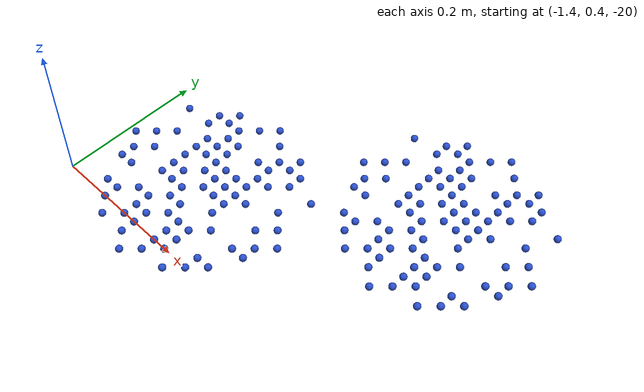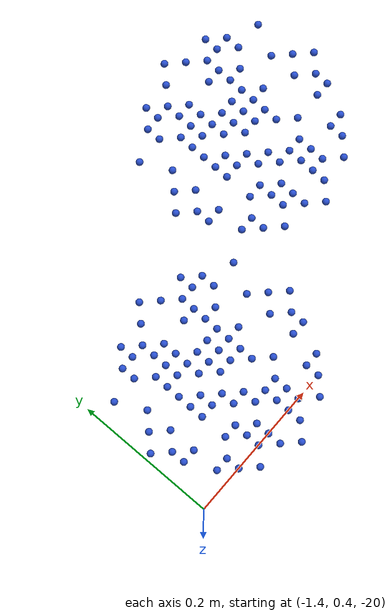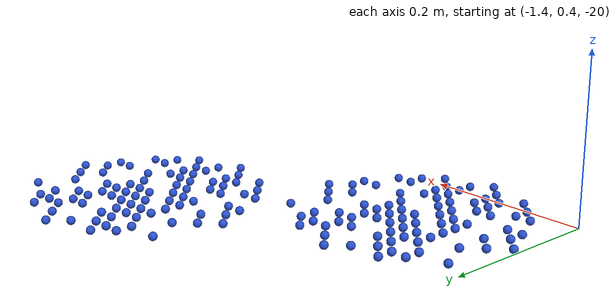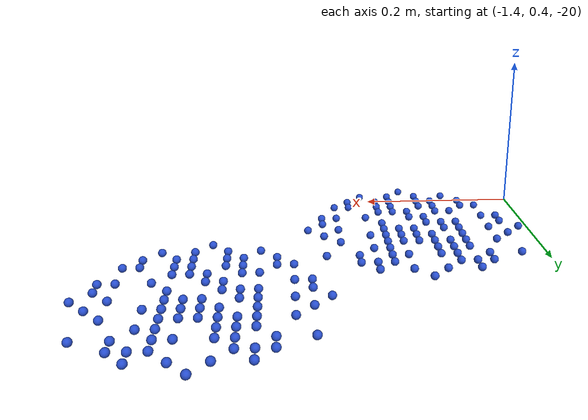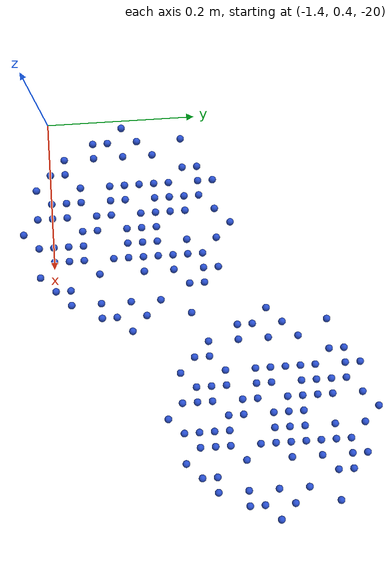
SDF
<sdf version="1.7">
 <model name="Washbasin_Water">
  <static>true</static>
  <link name="washbasin_water_tr">
   <pose>-0.99 0.68 -20 0 0 0</pose>
   <visual name="green_mark_centre1_visual">
    <geometry><sphere><radius>0.005</radius></sphere></geometry>
    <material><script><name>Gazebo/BlueGlow</name></script></material>
   </visual>
   <visual name="green_mark_centre2_visual">
    <pose>0.02 0 0 0 0 0</pose>
    <geometry><sphere><radius>0.005</radius></sphere></geometry>
    <material><script><name>Gazebo/BlueGlow</name></script></material>
   </visual>
   <visual name="green_mark_centre4_visual">
    <pose>0.04 0 0 0 0 0</pose>
    <geometry><sphere><radius>0.005</radius></sphere></geometry>
    <material><script><name>Gazebo/BlueGlow</name></script></material>
   </visual>
   <visual name="green_mark_centre5_visual">
    <pose>-0.04 0 0 0 0 0</pose>
    <geometry><sphere><radius>0.005</radius></sphere></geometry>
    <material><script><name>Gazebo/BlueGlow</name></script></material>
   </visual>
   <visual name="green_mark_centre7_visual">
    <pose>-0.06 0 0 0 0 0</pose>
    <geometry><sphere><radius>0.005</radius></sphere></geometry>
    <material><script><name>Gazebo/BlueGlow</name></script></material>
   </visual>
   <visual name="green_mark_centre8_visual">
    <pose>0 0.02 0 0 0 0</pose>
    <geometry><sphere><radius>0.005</radius></sphere></geometry>
    <material><script><name>Gazebo/BlueGlow</name></script></material>
   </visual>
   <visual name="green_mark_centre10_visual">
    <pose>0 0.04 0 0 0 0</pose>
    <geometry><sphere><radius>0.005</radius></sphere></geometry>
    <material><script><name>Gazebo/BlueGlow</name></script></material>
   </visual>
   <visual name="green_mark_centre11_visual">
    <pose>0 -0.04 0 0 0 0</pose>
    <geometry><sphere><radius>0.005</radius></sphere></geometry>
    <material><script><name>Gazebo/BlueGlow</name></script></material>
   </visual>
   <visual name="green_mark_centre13_visual">
    <pose>0 -0.06 0 0 0 0</pose>
    <geometry><sphere><radius>0.005</radius></sphere></geometry>
    <material><script><name>Gazebo/BlueGlow</name></script></material>
   </visual>
   <visual name="green_mark_centre14_visual">
    <pose>0.02 0.02 0 0 0 0</pose>
    <geometry><sphere><radius>0.005</radius></sphere></geometry>
    <material><script><name>Gazebo/BlueGlow</name></script></material>
   </visual>
   <visual name="green_mark_centre16_visual">
    <pose>-0.02 -0.02 0 0 0 0</pose>
    <geometry><sphere><radius>0.005</radius></sphere></geometry>
    <material><script><name>Gazebo/BlueGlow</name></script></material>
   </visual>
   <visual name="green_mark_centre17_visual">
    <pose>-0.02 0.02 0 0 0 0</pose>
    <geometry><sphere><radius>0.005</radius></sphere></geometry>
    <material><script><name>Gazebo/BlueGlow</name></script></material>
   </visual>
   <visual name="green_mark_centre19_visual">
    <pose>0.04 0.04 0 0 0 0</pose>
    <geometry><sphere><radius>0.005</radius></sphere></geometry>
    <material><script><name>Gazebo/BlueGlow</name></script></material>
   </visual>
   <visual name="green_mark_centre20_visual">
    <pose>-0.04 0.04 0 0 0 0</pose>
    <geometry><sphere><radius>0.005</radius></sphere></geometry>
    <material><script><name>Gazebo/BlueGlow</name></script></material>
   </visual>
   <visual name="green_mark_centre22_visual">
    <pose>0.04 0.06 0 0 0 0</pose>
    <geometry><sphere><radius>0.005</radius></sphere></geometry>
    <material><script><name>Gazebo/BlueGlow</name></script></material>
   </visual>
   <visual name="green_mark_centre23_visual">
    <pose>0.04 -0.06 0 0 0 0</pose>
    <geometry><sphere><radius>0.005</radius></sphere></geometry>
    <material><script><name>Gazebo/BlueGlow</name></script></material>
   </visual>
   <visual name="green_mark_centre25_visual">
    <pose>-0.04 0.06 0 0 0 0</pose>
    <geometry><sphere><radius>0.005</radius></sphere></geometry>
    <material><script><name>Gazebo/BlueGlow</name></script></material>
   </visual>
   <visual name="green_mark_centre26_visual">
    <pose>-0.04 -0.06 0 0 0 0</pose>
    <geometry><sphere><radius>0.005</radius></sphere></geometry>
    <material><script><name>Gazebo/BlueGlow</name></script></material>
   </visual>
   <visual name="green_mark_centre28_visual">
    <pose>0.06 0.06 0 0 0 0</pose>
    <geometry><sphere><radius>0.005</radius></sphere></geometry>
    <material><script><name>Gazebo/BlueGlow</name></script></material>
   </visual>
   <visual name="green_mark_centre29_visual">
    <pose>-0.06 0.06 0 0 0 0</pose>
    <geometry><sphere><radius>0.005</radius></sphere></geometry>
    <material><script><name>Gazebo/BlueGlow</name></script></material>
   </visual>
   <visual name="green_mark_centre31_visual">
    <pose>-0.06 -0.06 0 0 0 0</pose>
    <geometry><sphere><radius>0.005</radius></sphere></geometry>
    <material><script><name>Gazebo/BlueGlow</name></script></material>
   </visual>
   <visual name="green_mark_centre32_visual">
    <pose>0.02 0.04 0 0 0 0</pose>
    <geometry><sphere><radius>0.005</radius></sphere></geometry>
    <material><script><name>Gazebo/BlueGlow</name></script></material>
   </visual>
   <visual name="green_mark_centre34_visual">
    <pose>-0.02 0.04 0 0 0 0</pose>
    <geometry><sphere><radius>0.005</radius></sphere></geometry>
    <material><script><name>Gazebo/BlueGlow</name></script></material>
   </visual>
   <visual name="green_mark_centre35_visual">
    <pose>-0.02 -0.04 0 0 0 0</pose>
    <geometry><sphere><radius>0.005</radius></sphere></geometry>
    <material><script><name>Gazebo/BlueGlow</name></script></material>
   </visual>
   <visual name="green_mark_centre37_visual">
    <pose>0.02 -0.06 0 0 0 0</pose>
    <geometry><sphere><radius>0.005</radius></sphere></geometry>
    <material><script><name>Gazebo/BlueGlow</name></script></material>
   </visual>
   <visual name="green_mark_centre38_visual">
    <pose>-0.02 0.06 0 0 0 0</pose>
    <geometry><sphere><radius>0.005</radius></sphere></geometry>
    <material><script><name>Gazebo/BlueGlow</name></script></material>
   </visual>
   <visual name="green_mark_centre40_visual">
    <pose>0.04 0.02 0 0 0 0</pose>
    <geometry><sphere><radius>0.005</radius></sphere></geometry>
    <material><script><name>Gazebo/BlueGlow</name></script></material>
   </visual>
   <visual name="green_mark_centre41_visual">
    <pose>0.04 -0.02 0 0 0 0</pose>
    <geometry><sphere><radius>0.005</radius></sphere></geometry>
    <material><script><name>Gazebo/BlueGlow</name></script></material>
   </visual>
   <visual name="green_mark_centre43_visual">
    <pose>-0.04 -0.02 0 0 0 0</pose>
    <geometry><sphere><radius>0.005</radius></sphere></geometry>
    <material><script><name>Gazebo/BlueGlow</name></script></material>
   </visual>
   <visual name="green_mark_centre44_visual">
    <pose>0.06 0.02 0 0 0 0</pose>
    <geometry><sphere><radius>0.005</radius></sphere></geometry>
    <material><script><name>Gazebo/BlueGlow</name></script></material>
   </visual>
   <visual name="green_mark_centre46_visual">
    <pose>-0.06 0.02 0 0 0 0</pose>
    <geometry><sphere><radius>0.005</radius></sphere></geometry>
    <material><script><name>Gazebo/BlueGlow</name></script></material>
   </visual>
   <visual name="green_mark_centre47_visual">
    <pose>-0.06 -0.02 0 0 0 0</pose>
    <geometry><sphere><radius>0.005</radius></sphere></geometry>
    <material><script><name>Gazebo/BlueGlow</name></script></material>
   </visual>
   <visual name="green_mark_centre49_visual">
    <pose>0.06 -0.04 0 0 0 0</pose>
    <geometry><sphere><radius>0.005</radius></sphere></geometry>
    <material><script><name>Gazebo/BlueGlow</name></script></material>
   </visual>
   <visual name="green_mark_centre50_visual">
    <pose>-0.06 0.04 0 0 0 0</pose>
    <geometry><sphere><radius>0.005</radius></sphere></geometry>
    <material><script><name>Gazebo/BlueGlow</name></script></material>
   </visual>
   <visual name="green_mark_top1_visual">
    <pose>-0.06 0.12 0 0 0 0</pose>
    <geometry><sphere><radius>0.005</radius></sphere></geometry>
    <material><script><name>Gazebo/BlueGlow</name></script></material>
   </visual>
   <visual name="green_mark_top2_visual">
    <pose>-0.06 0.10 0 0 0 0</pose>
    <geometry><sphere><radius>0.005</radius></sphere></geometry>
    <material><script><name>Gazebo/BlueGlow</name></script></material>
   </visual>
   <visual name="green_mark_top4_visual">
    <pose>-0.04 0.10 0 0 0 0</pose>
    <geometry><sphere><radius>0.005</radius></sphere></geometry>
    <material><script><name>Gazebo/BlueGlow</name></script></material>
   </visual>
   <visual name="green_mark_top7_visual">
    <pose>-0.04 0.08 0 0 0 0</pose>
    <geometry><sphere><radius>0.005</radius></sphere></geometry>
    <material><script><name>Gazebo/BlueGlow</name></script></material>
   </visual>
   <visual name="green_mark_top8_visual">
    <pose>-0.02 0.12 0 0 0 0</pose>
    <geometry><sphere><radius>0.005</radius></sphere></geometry>
    <material><script><name>Gazebo/BlueGlow</name></script></material>
   </visual>
   <visual name="green_mark_top10_visual">
    <pose>-0.02 0.12 0 0 0 0</pose>
    <geometry><sphere><radius>0.005</radius></sphere></geometry>
    <material><script><name>Gazebo/BlueGlow</name></script></material>
   </visual>
   <visual name="green_mark_top12_visual">
    <pose>-0.02 0.08 0 0 0 0</pose>
    <geometry><sphere><radius>0.005</radius></sphere></geometry>
    <material><script><name>Gazebo/BlueGlow</name></script></material>
   </visual>
   <visual name="green_mark_top14_visual">
    <pose>0.06 0.12 0 0 0 0</pose>
    <geometry><sphere><radius>0.005</radius></sphere></geometry>
    <material><script><name>Gazebo/BlueGlow</name></script></material>
   </visual>
   <visual name="green_mark_top15_visual">
    <pose>0.06 0.10 0 0 0 0</pose>
    <geometry><sphere><radius>0.005</radius></sphere></geometry>
    <material><script><name>Gazebo/BlueGlow</name></script></material>
   </visual>
   <visual name="green_mark_top17_visual">
    <pose>0.04 0.10 0 0 0 0</pose>
    <geometry><sphere><radius>0.005</radius></sphere></geometry>
    <material><script><name>Gazebo/BlueGlow</name></script></material>
   </visual>
   <visual name="green_mark_top20_visual">
    <pose>0.04 0.08 0 0 0 0</pose>
    <geometry><sphere><radius>0.005</radius></sphere></geometry>
    <material><script><name>Gazebo/BlueGlow</name></script></material>
   </visual>
   <visual name="green_mark_top21_visual">
    <pose>0.02 0.12 0 0 0 0</pose>
    <geometry><sphere><radius>0.005</radius></sphere></geometry>
    <material><script><name>Gazebo/BlueGlow</name></script></material>
   </visual>
   <visual name="green_mark_top23_visual">
    <pose>0.02 0.12 0 0 0 0</pose>
    <geometry><sphere><radius>0.005</radius></sphere></geometry>
    <material><script><name>Gazebo/BlueGlow</name></script></material>
   </visual>
   <visual name="green_mark_top25_visual">
    <pose>0.02 0.08 0 0 0 0</pose>
    <geometry><sphere><radius>0.005</radius></sphere></geometry>
    <material><script><name>Gazebo/BlueGlow</name></script></material>
   </visual>
   <visual name="green_mark_top88_visual">
    <pose>0.0 0.14 0 0 0 0</pose>
    <geometry><sphere><radius>0.005</radius></sphere></geometry>
    <material><script><name>Gazebo/BlueGlow</name></script></material>
   </visual>
   <visual name="green_mark_top89_visual">
    <pose>0.0 -0.14 0 0 0 0</pose>
    <geometry><sphere><radius>0.005</radius></sphere></geometry>
    <material><script><name>Gazebo/BlueGlow</name></script></material>
   </visual>
   <visual name="green_mark_top3_visual">
    <pose>-0.06 -0.12 0 0 0 0</pose>
    <geometry><sphere><radius>0.005</radius></sphere></geometry>
    <material><script><name>Gazebo/BlueGlow</name></script></material>
   </visual>
   <visual name="green_mark_top5_visual">
    <pose>-0.04 -0.10 0 0 0 0</pose>
    <geometry><sphere><radius>0.005</radius></sphere></geometry>
    <material><script><name>Gazebo/BlueGlow</name></script></material>
   </visual>
   <visual name="green_mark_top6_visual">
    <pose>-0.04 -0.08 0 0 0 0</pose>
    <geometry><sphere><radius>0.005</radius></sphere></geometry>
    <material><script><name>Gazebo/BlueGlow</name></script></material>
   </visual>
   <visual name="green_mark_top9_visual">
    <pose>-0.02 -0.12 0 0 0 0</pose>
    <geometry><sphere><radius>0.005</radius></sphere></geometry>
    <material><script><name>Gazebo/BlueGlow</name></script></material>
   </visual>
   <visual name="green_mark_top11_visual">
    <pose>-0.02 -0.10 0 0 0 0</pose>
    <geometry><sphere><radius>0.005</radius></sphere></geometry>
    <material><script><name>Gazebo/BlueGlow</name></script></material>
   </visual>
   <visual name="green_mark_top13_visual">
    <pose>-0.02 -0.08 0 0 0 0</pose>
    <geometry><sphere><radius>0.005</radius></sphere></geometry>
    <material><script><name>Gazebo/BlueGlow</name></script></material>
   </visual>
   <visual name="green_mark_top6_visual">
    <pose>-0.04 -0.08 0 0 0 0</pose>
    <geometry><sphere><radius>0.005</radius></sphere></geometry>
    <material><script><name>Gazebo/BlueGlow</name></script></material>
   </visual>
   <visual name="green_mark_top16_visual">
    <pose>0.06 -0.12 0 0 0 0</pose>
    <geometry><sphere><radius>0.005</radius></sphere></geometry>
    <material><script><name>Gazebo/BlueGlow</name></script></material>
   </visual>
   <visual name="green_mark_top18_visual">
    <pose>0.04 -0.10 0 0 0 0</pose>
    <geometry><sphere><radius>0.005</radius></sphere></geometry>
    <material><script><name>Gazebo/BlueGlow</name></script></material>
   </visual>
   <visual name="green_mark_top19_visual">
    <pose>0.04 -0.08 0 0 0 0</pose>
    <geometry><sphere><radius>0.005</radius></sphere></geometry>
    <material><script><name>Gazebo/BlueGlow</name></script></material>
   </visual>
   <visual name="green_mark_top22_visual">
    <pose>0.02 -0.12 0 0 0 0</pose>
    <geometry><sphere><radius>0.005</radius></sphere></geometry>
    <material><script><name>Gazebo/BlueGlow</name></script></material>
   </visual>
   <visual name="green_mark_top24_visual">
    <pose>0.02 -0.10 0 0 0 0</pose>
    <geometry><sphere><radius>0.005</radius></sphere></geometry>
    <material><script><name>Gazebo/BlueGlow</name></script></material>
   </visual>
   <visual name="green_mark_top26_visual">
    <pose>0.02 -0.08 0 0 0 0</pose>
    <geometry><sphere><radius>0.005</radius></sphere></geometry>
    <material><script><name>Gazebo/BlueGlow</name></script></material>
   </visual>
   <visual name="green_mark_top3_visual">
    <pose>-0.14 0 0 0 0 0</pose>
    <geometry><sphere><radius>0.005</radius></sphere></geometry>
    <material><script><name>Gazebo/BlueGlow</name></script></material>
   </visual>
   <visual name="green_mark_top365_visual">
    <pose>-0.12 0.08 0 0 0 0</pose>
    <geometry><sphere><radius>0.005</radius></sphere></geometry>
    <material><script><name>Gazebo/BlueGlow</name></script></material>
   </visual>
   <visual name="green_mark_top93_visual">
    <pose>-0.10 0 0 0 0 0</pose>
    <geometry><sphere><radius>0.005</radius></sphere></geometry>
    <material><script><name>Gazebo/BlueGlow</name></script></material>
   </visual>
   <visual name="green_mark_top5_visual">
    <pose>-0.12 0.02 0 0 0 0</pose>
    <geometry><sphere><radius>0.005</radius></sphere></geometry>
    <material><script><name>Gazebo/BlueGlow</name></script></material>
   </visual>
   <visual name="green_mark_top6_visual">
    <pose>-0.10 0.04 0 0 0 0</pose>
    <geometry><sphere><radius>0.005</radius></sphere></geometry>
    <material><script><name>Gazebo/BlueGlow</name></script></material>
   </visual>
   <visual name="green_mark_top20_visual">
    <pose>-0.08 0.10 0 0 0 0</pose>
    <geometry><sphere><radius>0.005</radius></sphere></geometry>
    <material><script><name>Gazebo/BlueGlow</name></script></material>
   </visual>
   <visual name="green_mark_top50_visual">
    <pose>-0.08 0.08 0 0 0 0</pose>
    <geometry><sphere><radius>0.005</radius></sphere></geometry>
    <material><script><name>Gazebo/BlueGlow</name></script></material>
   </visual>
   <visual name="green_mark_top3_visual">
    <pose>-0.12 -0.04 0 0 0 0</pose>
    <geometry><sphere><radius>0.005</radius></sphere></geometry>
    <material><script><name>Gazebo/BlueGlow</name></script></material>
   </visual>
   <visual name="green_mark_top5_visual">
    <pose>-0.12 -0.02 0 0 0 0</pose>
    <geometry><sphere><radius>0.005</radius></sphere></geometry>
    <material><script><name>Gazebo/BlueGlow</name></script></material>
   </visual>
   <visual name="green_mark_top6_visual">
    <pose>-0.10 -0.04 0 0 0 0</pose>
    <geometry><sphere><radius>0.005</radius></sphere></geometry>
    <material><script><name>Gazebo/BlueGlow</name></script></material>
   </visual>
   <visual name="green_mark_top6_visual">
    <pose>-0.10 -0.08 0 0 0 0</pose>
    <geometry><sphere><radius>0.005</radius></sphere></geometry>
    <material><script><name>Gazebo/BlueGlow</name></script></material>
   </visual>
   <visual name="green_mark_top20_visual">
    <pose>-0.08 -0.10 0 0 0 0</pose>
    <geometry><sphere><radius>0.005</radius></sphere></geometry>
    <material><script><name>Gazebo/BlueGlow</name></script></material>
   </visual>
   <visual name="green_mark_top50_visual">
    <pose>-0.08 -0.08 0 0 0 0</pose>
    <geometry><sphere><radius>0.005</radius></sphere></geometry>
    <material><script><name>Gazebo/BlueGlow</name></script></material>
   </visual>
   <visual name="green_mark_top3_visual">
    <pose>0.14 0 0 0 0 0</pose>
    <geometry><sphere><radius>0.005</radius></sphere></geometry>
    <material><script><name>Gazebo/BlueGlow</name></script></material>
   </visual>
   <visual name="green_mark_top365_visual">
    <pose>0.12 0.08 0 0 0 0</pose>
    <geometry><sphere><radius>0.005</radius></sphere></geometry>
    <material><script><name>Gazebo/BlueGlow</name></script></material>
   </visual>
   <visual name="green_mark_top93_visual">
    <pose>0.10 0 0 0 0 0</pose>
    <geometry><sphere><radius>0.005</radius></sphere></geometry>
    <material><script><name>Gazebo/BlueGlow</name></script></material>
   </visual>
   <visual name="green_mark_top5_visual">
    <pose>0.12 0.02 0 0 0 0</pose>
    <geometry><sphere><radius>0.005</radius></sphere></geometry>
    <material><script><name>Gazebo/BlueGlow</name></script></material>
   </visual>
   <visual name="green_mark_top6_visual">
    <pose>0.10 0.04 0 0 0 0</pose>
    <geometry><sphere><radius>0.005</radius></sphere></geometry>
    <material><script><name>Gazebo/BlueGlow</name></script></material>
   </visual>
   <visual name="green_mark_top20_visual">
    <pose>0.08 0.10 0 0 0 0</pose>
    <geometry><sphere><radius>0.005</radius></sphere></geometry>
    <material><script><name>Gazebo/BlueGlow</name></script></material>
   </visual>
   <visual name="green_mark_top50_visual">
    <pose>0.08 0.08 0 0 0 0</pose>
    <geometry><sphere><radius>0.005</radius></sphere></geometry>
    <material><script><name>Gazebo/BlueGlow</name></script></material>
   </visual>
   <visual name="green_mark_top3_visual">
    <pose>0.12 -0.04 0 0 0 0</pose>
    <geometry><sphere><radius>0.005</radius></sphere></geometry>
    <material><script><name>Gazebo/BlueGlow</name></script></material>
   </visual>
   <visual name="green_mark_top5_visual">
    <pose>0.12 -0.02 0 0 0 0</pose>
    <geometry><sphere><radius>0.005</radius></sphere></geometry>
    <material><script><name>Gazebo/BlueGlow</name></script></material>
   </visual>
   <visual name="green_mark_top6_visual">
    <pose>0.10 -0.04 0 0 0 0</pose>
    <geometry><sphere><radius>0.005</radius></sphere></geometry>
    <material><script><name>Gazebo/BlueGlow</name></script></material>
   </visual>
   <visual name="green_mark_top6_visual">
    <pose>0.10 -0.08 0 0 0 0</pose>
    <geometry><sphere><radius>0.005</radius></sphere></geometry>
    <material><script><name>Gazebo/BlueGlow</name></script></material>
   </visual>
   <visual name="green_mark_top20_visual">
    <pose>0.08 -0.10 0 0 0 0</pose>
    <geometry><sphere><radius>0.005</radius></sphere></geometry>
    <material><script><name>Gazebo/BlueGlow</name></script></material>
   </visual>
   <visual name="green_mark_top50_visual">
    <pose>0.08 -0.08 0 0 0 0</pose>
    <geometry><sphere><radius>0.005</radius></sphere></geometry>
    <material><script><name>Gazebo/BlueGlow</name></script></material>
   </visual>
  </link>
  <link name="washbasin_water_inr">
   <pose>-1.25 0.5 -20 0 0 0</pose>
   <visual name="green_mark_centre1_visual">
    <geometry><sphere><radius>0.005</radius></sphere></geometry>
    <material><script><name>Gazebo/BlueGlow</name></script></material>
   </visual>
   <visual name="green_mark_centre2_visual">
    <pose>0.02 0 0 0 0 0</pose>
    <geometry><sphere><radius>0.005</radius></sphere></geometry>
    <material><script><name>Gazebo/BlueGlow</name></script></material>
   </visual>
   <visual name="green_mark_centre4_visual">
    <pose>0.04 0 0 0 0 0</pose>
    <geometry><sphere><radius>0.005</radius></sphere></geometry>
    <material><script><name>Gazebo/BlueGlow</name></script></material>
   </visual>
   <visual name="green_mark_centre5_visual">
    <pose>-0.04 0 0 0 0 0</pose>
    <geometry><sphere><radius>0.005</radius></sphere></geometry>
    <material><script><name>Gazebo/BlueGlow</name></script></material>
   </visual>
   <visual name="green_mark_centre7_visual">
    <pose>-0.06 0 0 0 0 0</pose>
    <geometry><sphere><radius>0.005</radius></sphere></geometry>
    <material><script><name>Gazebo/BlueGlow</name></script></material>
   </visual>
   <visual name="green_mark_centre8_visual">
    <pose>0 0.02 0 0 0 0</pose>
    <geometry><sphere><radius>0.005</radius></sphere></geometry>
    <material><script><name>Gazebo/BlueGlow</name></script></material>
   </visual>
   <visual name="green_mark_centre10_visual">
    <pose>0 0.04 0 0 0 0</pose>
    <geometry><sphere><radius>0.005</radius></sphere></geometry>
    <material><script><name>Gazebo/BlueGlow</name></script></material>
   </visual>
   <visual name="green_mark_centre11_visual">
    <pose>0 -0.04 0 0 0 0</pose>
    <geometry><sphere><radius>0.005</radius></sphere></geometry>
    <material><script><name>Gazebo/BlueGlow</name></script></material>
   </visual>
   <visual name="green_mark_centre13_visual">
    <pose>0 -0.06 0 0 0 0</pose>
    <geometry><sphere><radius>0.005</radius></sphere></geometry>
    <material><script><name>Gazebo/BlueGlow</name></script></material>
   </visual>
   <visual name="green_mark_centre14_visual">
    <pose>0.02 0.02 0 0 0 0</pose>
    <geometry><sphere><radius>0.005</radius></sphere></geometry>
    <material><script><name>Gazebo/BlueGlow</name></script></material>
   </visual>
   <visual name="green_mark_centre16_visual">
    <pose>-0.02 -0.02 0 0 0 0</pose>
    <geometry><sphere><radius>0.005</radius></sphere></geometry>
    <material><script><name>Gazebo/BlueGlow</name></script></material>
   </visual>
   <visual name="green_mark_centre17_visual">
    <pose>-0.02 0.02 0 0 0 0</pose>
    <geometry><sphere><radius>0.005</radius></sphere></geometry>
    <material><script><name>Gazebo/BlueGlow</name></script></material>
   </visual>
   <visual name="green_mark_centre19_visual">
    <pose>0.04 0.04 0 0 0 0</pose>
    <geometry><sphere><radius>0.005</radius></sphere></geometry>
    <material><script><name>Gazebo/BlueGlow</name></script></material>
   </visual>
   <visual name="green_mark_centre20_visual">
    <pose>-0.04 0.04 0 0 0 0</pose>
    <geometry><sphere><radius>0.005</radius></sphere></geometry>
    <material><script><name>Gazebo/BlueGlow</name></script></material>
   </visual>
   <visual name="green_mark_centre22_visual">
    <pose>0.04 0.06 0 0 0 0</pose>
    <geometry><sphere><radius>0.005</radius></sphere></geometry>
    <material><script><name>Gazebo/BlueGlow</name></script></material>
   </visual>
   <visual name="green_mark_centre23_visual">
    <pose>0.04 -0.06 0 0 0 0</pose>
    <geometry><sphere><radius>0.005</radius></sphere></geometry>
    <material><script><name>Gazebo/BlueGlow</name></script></material>
   </visual>
   <visual name="green_mark_centre25_visual">
    <pose>-0.04 0.06 0 0 0 0</pose>
    <geometry><sphere><radius>0.005</radius></sphere></geometry>
    <material><script><name>Gazebo/BlueGlow</name></script></material>
   </visual>
   <visual name="green_mark_centre26_visual">
    <pose>-0.04 -0.06 0 0 0 0</pose>
    <geometry><sphere><radius>0.005</radius></sphere></geometry>
    <material><script><name>Gazebo/BlueGlow</name></script></material>
   </visual>
   <visual name="green_mark_centre28_visual">
    <pose>0.06 0.06 0 0 0 0</pose>
    <geometry><sphere><radius>0.005</radius></sphere></geometry>
    <material><script><name>Gazebo/BlueGlow</name></script></material>
   </visual>
   <visual name="green_mark_centre29_visual">
    <pose>-0.06 0.06 0 0 0 0</pose>
    <geometry><sphere><radius>0.005</radius></sphere></geometry>
    <material><script><name>Gazebo/BlueGlow</name></script></material>
   </visual>
   <visual name="green_mark_centre31_visual">
    <pose>-0.06 -0.06 0 0 0 0</pose>
    <geometry><sphere><radius>0.005</radius></sphere></geometry>
    <material><script><name>Gazebo/BlueGlow</name></script></material>
   </visual>
   <visual name="green_mark_centre32_visual">
    <pose>0.02 0.04 0 0 0 0</pose>
    <geometry><sphere><radius>0.005</radius></sphere></geometry>
    <material><script><name>Gazebo/BlueGlow</name></script></material>
   </visual>
   <visual name="green_mark_centre34_visual">
    <pose>-0.02 0.04 0 0 0 0</pose>
    <geometry><sphere><radius>0.005</radius></sphere></geometry>
    <material><script><name>Gazebo/BlueGlow</name></script></material>
   </visual>
   <visual name="green_mark_centre35_visual">
    <pose>-0.02 -0.04 0 0 0 0</pose>
    <geometry><sphere><radius>0.005</radius></sphere></geometry>
    <material><script><name>Gazebo/BlueGlow</name></script></material>
   </visual>
   <visual name="green_mark_centre37_visual">
    <pose>0.02 -0.06 0 0 0 0</pose>
    <geometry><sphere><radius>0.005</radius></sphere></geometry>
    <material><script><name>Gazebo/BlueGlow</name></script></material>
   </visual>
   <visual name="green_mark_centre38_visual">
    <pose>-0.02 0.06 0 0 0 0</pose>
    <geometry><sphere><radius>0.005</radius></sphere></geometry>
    <material><script><name>Gazebo/BlueGlow</name></script></material>
   </visual>
   <visual name="green_mark_centre40_visual">
    <pose>0.04 0.02 0 0 0 0</pose>
    <geometry><sphere><radius>0.005</radius></sphere></geometry>
    <material><script><name>Gazebo/BlueGlow</name></script></material>
   </visual>
   <visual name="green_mark_centre41_visual">
    <pose>0.04 -0.02 0 0 0 0</pose>
    <geometry><sphere><radius>0.005</radius></sphere></geometry>
    <material><script><name>Gazebo/BlueGlow</name></script></material>
   </visual>
   <visual name="green_mark_centre43_visual">
    <pose>-0.04 -0.02 0 0 0 0</pose>
    <geometry><sphere><radius>0.005</radius></sphere></geometry>
    <material><script><name>Gazebo/BlueGlow</name></script></material>
   </visual>
   <visual name="green_mark_centre44_visual">
    <pose>0.06 0.02 0 0 0 0</pose>
    <geometry><sphere><radius>0.005</radius></sphere></geometry>
    <material><script><name>Gazebo/BlueGlow</name></script></material>
   </visual>
   <visual name="green_mark_centre46_visual">
    <pose>-0.06 0.02 0 0 0 0</pose>
    <geometry><sphere><radius>0.005</radius></sphere></geometry>
    <material><script><name>Gazebo/BlueGlow</name></script></material>
   </visual>
   <visual name="green_mark_centre47_visual">
    <pose>-0.06 -0.02 0 0 0 0</pose>
    <geometry><sphere><radius>0.005</radius></sphere></geometry>
    <material><script><name>Gazebo/BlueGlow</name></script></material>
   </visual>
   <visual name="green_mark_centre49_visual">
    <pose>0.06 -0.04 0 0 0 0</pose>
    <geometry><sphere><radius>0.005</radius></sphere></geometry>
    <material><script><name>Gazebo/BlueGlow</name></script></material>
   </visual>
   <visual name="green_mark_centre50_visual">
    <pose>-0.06 0.04 0 0 0 0</pose>
    <geometry><sphere><radius>0.005</radius></sphere></geometry>
    <material><script><name>Gazebo/BlueGlow</name></script></material>
   </visual>
   <visual name="green_mark_top1_visual">
    <pose>-0.06 0.12 0 0 0 0</pose>
    <geometry><sphere><radius>0.005</radius></sphere></geometry>
    <material><script><name>Gazebo/BlueGlow</name></script></material>
   </visual>
   <visual name="green_mark_top2_visual">
    <pose>-0.06 0.10 0 0 0 0</pose>
    <geometry><sphere><radius>0.005</radius></sphere></geometry>
    <material><script><name>Gazebo/BlueGlow</name></script></material>
   </visual>
   <visual name="green_mark_top4_visual">
    <pose>-0.04 0.10 0 0 0 0</pose>
    <geometry><sphere><radius>0.005</radius></sphere></geometry>
    <material><script><name>Gazebo/BlueGlow</name></script></material>
   </visual>
   <visual name="green_mark_top7_visual">
    <pose>-0.04 0.08 0 0 0 0</pose>
    <geometry><sphere><radius>0.005</radius></sphere></geometry>
    <material><script><name>Gazebo/BlueGlow</name></script></material>
   </visual>
   <visual name="green_mark_top8_visual">
    <pose>-0.02 0.12 0 0 0 0</pose>
    <geometry><sphere><radius>0.005</radius></sphere></geometry>
    <material><script><name>Gazebo/BlueGlow</name></script></material>
   </visual>
   <visual name="green_mark_top10_visual">
    <pose>-0.02 0.12 0 0 0 0</pose>
    <geometry><sphere><radius>0.005</radius></sphere></geometry>
    <material><script><name>Gazebo/BlueGlow</name></script></material>
   </visual>
   <visual name="green_mark_top12_visual">
    <pose>-0.02 0.08 0 0 0 0</pose>
    <geometry><sphere><radius>0.005</radius></sphere></geometry>
    <material><script><name>Gazebo/BlueGlow</name></script></material>
   </visual>
   <visual name="green_mark_top14_visual">
    <pose>0.06 0.12 0 0 0 0</pose>
    <geometry><sphere><radius>0.005</radius></sphere></geometry>
    <material><script><name>Gazebo/BlueGlow</name></script></material>
   </visual>
   <visual name="green_mark_top15_visual">
    <pose>0.06 0.10 0 0 0 0</pose>
    <geometry><sphere><radius>0.005</radius></sphere></geometry>
    <material><script><name>Gazebo/BlueGlow</name></script></material>
   </visual>
   <visual name="green_mark_top17_visual">
    <pose>0.04 0.10 0 0 0 0</pose>
    <geometry><sphere><radius>0.005</radius></sphere></geometry>
    <material><script><name>Gazebo/BlueGlow</name></script></material>
   </visual>
   <visual name="green_mark_top20_visual">
    <pose>0.04 0.08 0 0 0 0</pose>
    <geometry><sphere><radius>0.005</radius></sphere></geometry>
    <material><script><name>Gazebo/BlueGlow</name></script></material>
   </visual>
   <visual name="green_mark_top21_visual">
    <pose>0.02 0.12 0 0 0 0</pose>
    <geometry><sphere><radius>0.005</radius></sphere></geometry>
    <material><script><name>Gazebo/BlueGlow</name></script></material>
   </visual>
   <visual name="green_mark_top23_visual">
    <pose>0.02 0.12 0 0 0 0</pose>
    <geometry><sphere><radius>0.005</radius></sphere></geometry>
    <material><script><name>Gazebo/BlueGlow</name></script></material>
   </visual>
   <visual name="green_mark_top25_visual">
    <pose>0.02 0.08 0 0 0 0</pose>
    <geometry><sphere><radius>0.005</radius></sphere></geometry>
    <material><script><name>Gazebo/BlueGlow</name></script></material>
   </visual>
   <visual name="green_mark_top88_visual">
    <pose>0.0 0.14 0 0 0 0</pose>
    <geometry><sphere><radius>0.005</radius></sphere></geometry>
    <material><script><name>Gazebo/BlueGlow</name></script></material>
   </visual>
   <visual name="green_mark_top89_visual">
    <pose>0.0 -0.14 0 0 0 0</pose>
    <geometry><sphere><radius>0.005</radius></sphere></geometry>
    <material><script><name>Gazebo/BlueGlow</name></script></material>
   </visual>
   <visual name="green_mark_top3_visual">
    <pose>-0.06 -0.12 0 0 0 0</pose>
    <geometry><sphere><radius>0.005</radius></sphere></geometry>
    <material><script><name>Gazebo/BlueGlow</name></script></material>
   </visual>
   <visual name="green_mark_top5_visual">
    <pose>-0.04 -0.10 0 0 0 0</pose>
    <geometry><sphere><radius>0.005</radius></sphere></geometry>
    <material><script><name>Gazebo/BlueGlow</name></script></material>
   </visual>
   <visual name="green_mark_top6_visual">
    <pose>-0.04 -0.08 0 0 0 0</pose>
    <geometry><sphere><radius>0.005</radius></sphere></geometry>
    <material><script><name>Gazebo/BlueGlow</name></script></material>
   </visual>
   <visual name="green_mark_top9_visual">
    <pose>-0.02 -0.12 0 0 0 0</pose>
    <geometry><sphere><radius>0.005</radius></sphere></geometry>
    <material><script><name>Gazebo/BlueGlow</name></script></material>
   </visual>
   <visual name="green_mark_top11_visual">
    <pose>-0.02 -0.10 0 0 0 0</pose>
    <geometry><sphere><radius>0.005</radius></sphere></geometry>
    <material><script><name>Gazebo/BlueGlow</name></script></material>
   </visual>
   <visual name="green_mark_top13_visual">
    <pose>-0.02 -0.08 0 0 0 0</pose>
    <geometry><sphere><radius>0.005</radius></sphere></geometry>
    <material><script><name>Gazebo/BlueGlow</name></script></material>
   </visual>
   <visual name="green_mark_top6_visual">
    <pose>-0.04 -0.08 0 0 0 0</pose>
    <geometry><sphere><radius>0.005</radius></sphere></geometry>
    <material><script><name>Gazebo/BlueGlow</name></script></material>
   </visual>
   <visual name="green_mark_top16_visual">
    <pose>0.06 -0.12 0 0 0 0</pose>
    <geometry><sphere><radius>0.005</radius></sphere></geometry>
    <material><script><name>Gazebo/BlueGlow</name></script></material>
   </visual>
   <visual name="green_mark_top18_visual">
    <pose>0.04 -0.10 0 0 0 0</pose>
    <geometry><sphere><radius>0.005</radius></sphere></geometry>
    <material><script><name>Gazebo/BlueGlow</name></script></material>
   </visual>
   <visual name="green_mark_top19_visual">
    <pose>0.04 -0.08 0 0 0 0</pose>
    <geometry><sphere><radius>0.005</radius></sphere></geometry>
    <material><script><name>Gazebo/BlueGlow</name></script></material>
   </visual>
   <visual name="green_mark_top22_visual">
    <pose>0.02 -0.12 0 0 0 0</pose>
    <geometry><sphere><radius>0.005</radius></sphere></geometry>
    <material><script><name>Gazebo/BlueGlow</name></script></material>
   </visual>
   <visual name="green_mark_top24_visual">
    <pose>0.02 -0.10 0 0 0 0</pose>
    <geometry><sphere><radius>0.005</radius></sphere></geometry>
    <material><script><name>Gazebo/BlueGlow</name></script></material>
   </visual>
   <visual name="green_mark_top26_visual">
    <pose>0.02 -0.08 0 0 0 0</pose>
    <geometry><sphere><radius>0.005</radius></sphere></geometry>
    <material><script><name>Gazebo/BlueGlow</name></script></material>
   </visual>
   <visual name="green_mark_top3_visual">
    <pose>-0.14 0 0 0 0 0</pose>
    <geometry><sphere><radius>0.005</radius></sphere></geometry>
    <material><script><name>Gazebo/BlueGlow</name></script></material>
   </visual>
   <visual name="green_mark_top365_visual">
    <pose>-0.12 0.08 0 0 0 0</pose>
    <geometry><sphere><radius>0.005</radius></sphere></geometry>
    <material><script><name>Gazebo/BlueGlow</name></script></material>
   </visual>
   <visual name="green_mark_top93_visual">
    <pose>-0.10 0 0 0 0 0</pose>
    <geometry><sphere><radius>0.005</radius></sphere></geometry>
    <material><script><name>Gazebo/BlueGlow</name></script></material>
   </visual>
   <visual name="green_mark_top5_visual">
    <pose>-0.12 0.02 0 0 0 0</pose>
    <geometry><sphere><radius>0.005</radius></sphere></geometry>
    <material><script><name>Gazebo/BlueGlow</name></script></material>
   </visual>
   <visual name="green_mark_top6_visual">
    <pose>-0.10 0.04 0 0 0 0</pose>
    <geometry><sphere><radius>0.005</radius></sphere></geometry>
    <material><script><name>Gazebo/BlueGlow</name></script></material>
   </visual>
   <visual name="green_mark_top20_visual">
    <pose>-0.08 0.10 0 0 0 0</pose>
    <geometry><sphere><radius>0.005</radius></sphere></geometry>
    <material><script><name>Gazebo/BlueGlow</name></script></material>
   </visual>
   <visual name="green_mark_top50_visual">
    <pose>-0.08 0.08 0 0 0 0</pose>
    <geometry><sphere><radius>0.005</radius></sphere></geometry>
    <material><script><name>Gazebo/BlueGlow</name></script></material>
   </visual>
   <visual name="green_mark_top3_visual">
    <pose>-0.12 -0.04 0 0 0 0</pose>
    <geometry><sphere><radius>0.005</radius></sphere></geometry>
    <material><script><name>Gazebo/BlueGlow</name></script></material>
   </visual>
   <visual name="green_mark_top5_visual">
    <pose>-0.12 -0.02 0 0 0 0</pose>
    <geometry><sphere><radius>0.005</radius></sphere></geometry>
    <material><script><name>Gazebo/BlueGlow</name></script></material>
   </visual>
   <visual name="green_mark_top6_visual">
    <pose>-0.10 -0.04 0 0 0 0</pose>
    <geometry><sphere><radius>0.005</radius></sphere></geometry>
    <material><script><name>Gazebo/BlueGlow</name></script></material>
   </visual>
   <visual name="green_mark_top6_visual">
    <pose>-0.10 -0.08 0 0 0 0</pose>
    <geometry><sphere><radius>0.005</radius></sphere></geometry>
    <material><script><name>Gazebo/BlueGlow</name></script></material>
   </visual>
   <visual name="green_mark_top20_visual">
    <pose>-0.08 -0.10 0 0 0 0</pose>
    <geometry><sphere><radius>0.005</radius></sphere></geometry>
    <material><script><name>Gazebo/BlueGlow</name></script></material>
   </visual>
   <visual name="green_mark_top50_visual">
    <pose>-0.08 -0.08 0 0 0 0</pose>
    <geometry><sphere><radius>0.005</radius></sphere></geometry>
    <material><script><name>Gazebo/BlueGlow</name></script></material>
   </visual>
   <visual name="green_mark_top3_visual">
    <pose>0.14 0 0 0 0 0</pose>
    <geometry><sphere><radius>0.005</radius></sphere></geometry>
    <material><script><name>Gazebo/BlueGlow</name></script></material>
   </visual>
   <visual name="green_mark_top365_visual">
    <pose>0.12 0.08 0 0 0 0</pose>
    <geometry><sphere><radius>0.005</radius></sphere></geometry>
    <material><script><name>Gazebo/BlueGlow</name></script></material>
   </visual>
   <visual name="green_mark_top93_visual">
    <pose>0.10 0 0 0 0 0</pose>
    <geometry><sphere><radius>0.005</radius></sphere></geometry>
    <material><script><name>Gazebo/BlueGlow</name></script></material>
   </visual>
   <visual name="green_mark_top5_visual">
    <pose>0.12 0.02 0 0 0 0</pose>
    <geometry><sphere><radius>0.005</radius></sphere></geometry>
    <material><script><name>Gazebo/BlueGlow</name></script></material>
   </visual>
   <visual name="green_mark_top6_visual">
    <pose>0.10 0.04 0 0 0 0</pose>
    <geometry><sphere><radius>0.005</radius></sphere></geometry>
    <material><script><name>Gazebo/BlueGlow</name></script></material>
   </visual>
   <visual name="green_mark_top20_visual">
    <pose>0.08 0.10 0 0 0 0</pose>
    <geometry><sphere><radius>0.005</radius></sphere></geometry>
    <material><script><name>Gazebo/BlueGlow</name></script></material>
   </visual>
   <visual name="green_mark_top50_visual">
    <pose>0.08 0.08 0 0 0 0</pose>
    <geometry><sphere><radius>0.005</radius></sphere></geometry>
    <material><script><name>Gazebo/BlueGlow</name></script></material>
   </visual>
   <visual name="green_mark_top3_visual">
    <pose>0.12 -0.04 0 0 0 0</pose>
    <geometry><sphere><radius>0.005</radius></sphere></geometry>
    <material><script><name>Gazebo/BlueGlow</name></script></material>
   </visual>
   <visual name="green_mark_top5_visual">
    <pose>0.12 -0.02 0 0 0 0</pose>
    <geometry><sphere><radius>0.005</radius></sphere></geometry>
    <material><script><name>Gazebo/BlueGlow</name></script></material>
   </visual>
   <visual name="green_mark_top6_visual">
    <pose>0.10 -0.04 0 0 0 0</pose>
    <geometry><sphere><radius>0.005</radius></sphere></geometry>
    <material><script><name>Gazebo/BlueGlow</name></script></material>
   </visual>
   <visual name="green_mark_top6_visual">
    <pose>0.10 -0.08 0 0 0 0</pose>
    <geometry><sphere><radius>0.005</radius></sphere></geometry>
    <material><script><name>Gazebo/BlueGlow</name></script></material>
   </visual>
   <visual name="green_mark_top20_visual">
    <pose>0.08 -0.10 0 0 0 0</pose>
    <geometry><sphere><radius>0.005</radius></sphere></geometry>
    <material><script><name>Gazebo/BlueGlow</name></script></material>
   </visual>
   <visual name="green_mark_top50_visual">
    <pose>0.08 -0.08 0 0 0 0</pose>
    <geometry><sphere><radius>0.005</radius></sphere></geometry>
    <material><script><name>Gazebo/BlueGlow</name></script></material>
   </visual>
  </link>
 </model>
</sdf>
